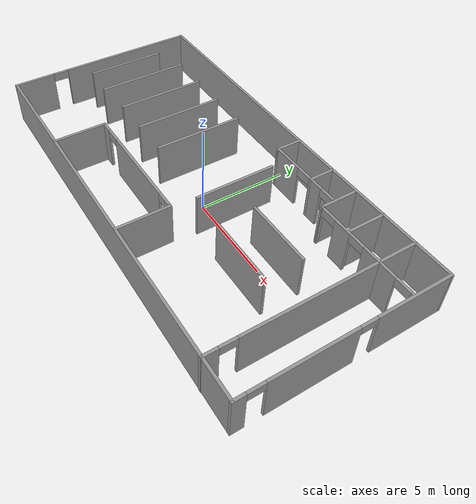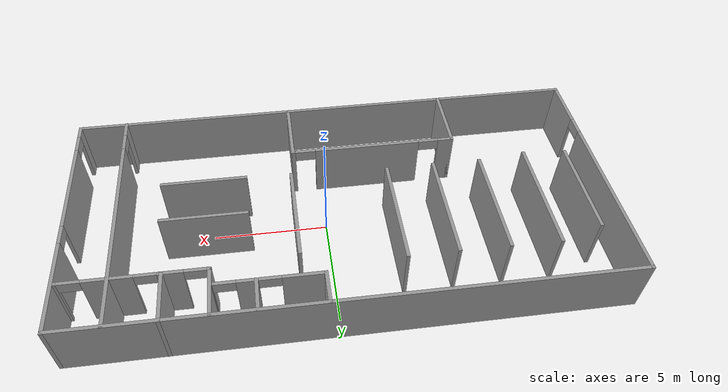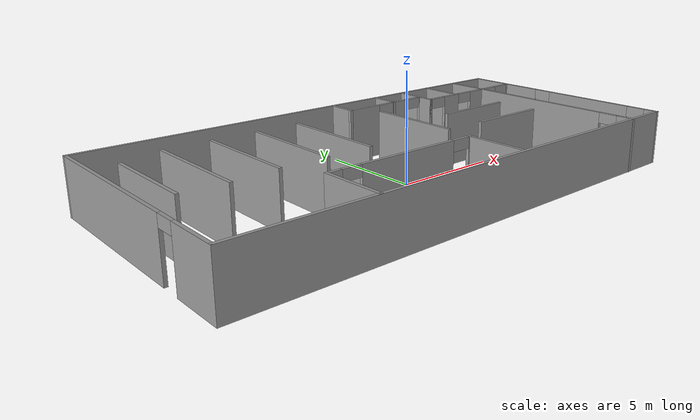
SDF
<?xml version='1.0'?>
<sdf version='1.6'>
  <model name='retail'>
    <pose frame=''>-0.623438 0.128849 0 0 -0 0</pose>
    <link name='Wall_16'>
      <collision name='Wall_16_Collision'>
        <geometry>
          <box>
            <size>23.25 0.15 2.5</size>
          </box>
        </geometry>
        <pose frame=''>0 0 1.25 0 -0 0</pose>
      </collision>
      <visual name='Wall_16_Visual'>
        <pose frame=''>0 0 1.25 0 -0 0</pose>
        <geometry>
          <box>
            <size>23.25 0.15 2.5</size>
          </box>
        </geometry>
        <material>
          <script>
            <uri>file://media/materials/scripts/gazebo.material</uri>
            <name>Gazebo/Grey</name>
          </script>
          <ambient>1 1 1 1</ambient>
        </material>
        <meta>
          <layer>0</layer>
        </meta>
      </visual>
      <pose frame=''>0 -5.54055 0 0 -0 0</pose>
    </link>
    <link name='Wall_17'>
      <pose frame=''>11.55 0.009451 0 0 -0 1.5708</pose>
      <visual name='Wall_17_Visual_0'>
        <pose frame=''>-5.28706 0 1.25 0 -0 0</pose>
        <geometry>
          <box>
            <size>0.675885 0.15 2.5</size>
          </box>
        </geometry>
        <material>
          <script>
            <uri>file://media/materials/scripts/gazebo.material</uri>
            <name>Gazebo/Grey</name>
          </script>
          <ambient>1 1 1 1</ambient>
        </material>
        <meta>
          <layer>0</layer>
        </meta>
      </visual>
      <collision name='Wall_17_Collision_0'>
        <geometry>
          <box>
            <size>0.675885 0.15 2.5</size>
          </box>
        </geometry>
        <pose frame=''>-5.28706 0 1.25 0 -0 0</pose>
      </collision>
      <visual name='Wall_17_Visual_1'>
        <pose frame=''>-1.77241 0 1.25 0 -0 0</pose>
        <geometry>
          <box>
            <size>4.55341 0.15 2.5</size>
          </box>
        </geometry>
        <material>
          <script>
            <uri>file://media/materials/scripts/gazebo.material</uri>
            <name>Gazebo/Grey</name>
          </script>
          <ambient>1 1 1 1</ambient>
        </material>
        <meta>
          <layer>0</layer>
        </meta>
      </visual>
      <collision name='Wall_17_Collision_1'>
        <geometry>
          <box>
            <size>4.55341 0.15 2.5</size>
          </box>
        </geometry>
        <pose frame=''>-1.77241 0 1.25 0 -0 0</pose>
      </collision>
      <visual name='Wall_17_Visual_2'>
        <pose frame=''>3.51465 0 1.25 0 -0 0</pose>
        <geometry>
          <box>
            <size>4.2207 0.15 2.5</size>
          </box>
        </geometry>
        <material>
          <script>
            <uri>file://media/materials/scripts/gazebo.material</uri>
            <name>Gazebo/Grey</name>
          </script>
          <ambient>1 1 1 1</ambient>
        </material>
        <meta>
          <layer>0</layer>
        </meta>
      </visual>
      <collision name='Wall_17_Collision_2'>
        <geometry>
          <box>
            <size>4.2207 0.15 2.5</size>
          </box>
        </geometry>
        <pose frame=''>3.51465 0 1.25 0 -0 0</pose>
      </collision>
      <visual name='Wall_17_Visual_3'>
        <pose frame=''>-4.49911 0 2.25 0 -0 0</pose>
        <geometry>
          <box>
            <size>0.9 0.15 0.5</size>
          </box>
        </geometry>
        <material>
          <script>
            <uri>file://media/materials/scripts/gazebo.material</uri>
            <name>Gazebo/Grey</name>
          </script>
          <ambient>1 1 1 1</ambient>
        </material>
        <meta>
          <layer>0</layer>
        </meta>
      </visual>
      <collision name='Wall_17_Collision_3'>
        <geometry>
          <box>
            <size>0.9 0.15 0.5</size>
          </box>
        </geometry>
        <pose frame=''>-4.49911 0 2.25 0 -0 0</pose>
      </collision>
      <visual name='Wall_17_Visual_4'>
        <pose frame=''>0.954296 0 2.25 0 -0 0</pose>
        <geometry>
          <box>
            <size>0.9 0.15 0.5</size>
          </box>
        </geometry>
        <material>
          <script>
            <uri>file://media/materials/scripts/gazebo.material</uri>
            <name>Gazebo/Grey</name>
          </script>
          <ambient>1 1 1 1</ambient>
        </material>
        <meta>
          <layer>0</layer>
        </meta>
      </visual>
      <collision name='Wall_17_Collision_4'>
        <geometry>
          <box>
            <size>0.9 0.15 0.5</size>
          </box>
        </geometry>
        <pose frame=''>0.954296 0 2.25 0 -0 0</pose>
      </collision>
    </link>
    <link name='Wall_18'>
      <collision name='Wall_18_Collision'>
        <geometry>
          <box>
            <size>23.25 0.15 2.5</size>
          </box>
        </geometry>
        <pose frame=''>0 0 1.25 0 -0 0</pose>
      </collision>
      <visual name='Wall_18_Visual'>
        <pose frame=''>0 0 1.25 0 -0 0</pose>
        <geometry>
          <box>
            <size>23.25 0.15 2.5</size>
          </box>
        </geometry>
        <material>
          <script>
            <uri>file://media/materials/scripts/gazebo.material</uri>
            <name>Gazebo/Grey</name>
          </script>
          <ambient>1 1 1 1</ambient>
        </material>
        <meta>
          <layer>0</layer>
        </meta>
      </visual>
      <pose frame=''>0 5.55945 0 0 -0 3.14159</pose>
    </link>
    <link name='Wall_19'>
      <pose frame=''>-11.55 0.009451 0 0 -0 -1.5708</pose>
      <visual name='Wall_19_Visual_0'>
        <pose frame=''>-1.63416 0 1.25 0 -0 0</pose>
        <geometry>
          <box>
            <size>7.98168 0.15 2.5</size>
          </box>
        </geometry>
        <material>
          <script>
            <uri>file://media/materials/scripts/gazebo.material</uri>
            <name>Gazebo/Grey</name>
          </script>
          <ambient>1 1 1 1</ambient>
        </material>
        <meta>
          <layer>0</layer>
        </meta>
      </visual>
      <collision name='Wall_19_Collision_0'>
        <geometry>
          <box>
            <size>7.98168 0.15 2.5</size>
          </box>
        </geometry>
        <pose frame=''>-1.63416 0 1.25 0 -0 0</pose>
      </collision>
      <visual name='Wall_19_Visual_1'>
        <pose frame=''>4.44084 0 1.25 0 -0 0</pose>
        <geometry>
          <box>
            <size>2.36832 0.15 2.5</size>
          </box>
        </geometry>
        <material>
          <script>
            <uri>file://media/materials/scripts/gazebo.material</uri>
            <name>Gazebo/Grey</name>
          </script>
          <ambient>1 1 1 1</ambient>
        </material>
        <meta>
          <layer>0</layer>
        </meta>
      </visual>
      <collision name='Wall_19_Collision_1'>
        <geometry>
          <box>
            <size>2.36832 0.15 2.5</size>
          </box>
        </geometry>
        <pose frame=''>4.44084 0 1.25 0 -0 0</pose>
      </collision>
      <visual name='Wall_19_Visual_2'>
        <pose frame=''>2.80668 0 2.25 0 -0 0</pose>
        <geometry>
          <box>
            <size>0.9 0.15 0.5</size>
          </box>
        </geometry>
        <material>
          <script>
            <uri>file://media/materials/scripts/gazebo.material</uri>
            <name>Gazebo/Grey</name>
          </script>
          <ambient>1 1 1 1</ambient>
        </material>
        <meta>
          <layer>0</layer>
        </meta>
      </visual>
      <collision name='Wall_19_Collision_2'>
        <geometry>
          <box>
            <size>0.9 0.15 0.5</size>
          </box>
        </geometry>
        <pose frame=''>2.80668 0 2.25 0 -0 0</pose>
      </collision>
    </link>
    <link name='Wall_35'>
      <collision name='Wall_35_Collision'>
        <geometry>
          <box>
            <size>2.25 0.15 2.5</size>
          </box>
        </geometry>
        <pose frame=''>0 0 1.25 0 -0 0</pose>
      </collision>
      <visual name='Wall_35_Visual'>
        <pose frame=''>0 0 1.25 0 -0 0</pose>
        <geometry>
          <box>
            <size>2.25 0.15 2.5</size>
          </box>
        </geometry>
        <material>
          <script>
            <uri>file://media/materials/scripts/gazebo.material</uri>
            <name>Gazebo/Grey</name>
          </script>
          <ambient>1 1 1 1</ambient>
        </material>
        <meta>
          <layer>0</layer>
        </meta>
      </visual>
      <pose frame=''>5.55195 4.48539 0 0 -0 -1.5708</pose>
    </link>
    <link name='Wall_36'>
      <pose frame=''>8.47695 3.43539 0 0 -0 0</pose>
      <visual name='Wall_36_Visual_0'>
        <pose frame=''>-2.9149 0 1.25 0 -0 0</pose>
        <geometry>
          <box>
            <size>0.170197 0.15 2.5</size>
          </box>
        </geometry>
        <material>
          <script>
            <uri>file://media/materials/scripts/gazebo.material</uri>
            <name>Gazebo/Grey</name>
          </script>
          <ambient>1 1 1 1</ambient>
        </material>
        <meta>
          <layer>0</layer>
        </meta>
      </visual>
      <collision name='Wall_36_Collision_0'>
        <geometry>
          <box>
            <size>0.170197 0.15 2.5</size>
          </box>
        </geometry>
        <pose frame=''>-2.9149 0 1.25 0 -0 0</pose>
      </collision>
      <visual name='Wall_36_Visual_1'>
        <pose frame=''>-1.42075 0 1.25 0 -0 0</pose>
        <geometry>
          <box>
            <size>1.0181 0.15 2.5</size>
          </box>
        </geometry>
        <material>
          <script>
            <uri>file://media/materials/scripts/gazebo.material</uri>
            <name>Gazebo/Grey</name>
          </script>
          <ambient>1 1 1 1</ambient>
        </material>
        <meta>
          <layer>0</layer>
        </meta>
      </visual>
      <collision name='Wall_36_Collision_1'>
        <geometry>
          <box>
            <size>1.0181 0.15 2.5</size>
          </box>
        </geometry>
        <pose frame=''>-1.42075 0 1.25 0 -0 0</pose>
      </collision>
      <visual name='Wall_36_Visual_2'>
        <pose frame=''>0.986268 0 1.25 0 -0 0</pose>
        <geometry>
          <box>
            <size>1.99595 0.15 2.5</size>
          </box>
        </geometry>
        <material>
          <script>
            <uri>file://media/materials/scripts/gazebo.material</uri>
            <name>Gazebo/Grey</name>
          </script>
          <ambient>1 1 1 1</ambient>
        </material>
        <meta>
          <layer>0</layer>
        </meta>
      </visual>
      <collision name='Wall_36_Collision_2'>
        <geometry>
          <box>
            <size>1.99595 0.15 2.5</size>
          </box>
        </geometry>
        <pose frame=''>0.986268 0 1.25 0 -0 0</pose>
      </collision>
      <visual name='Wall_36_Visual_3'>
        <pose frame=''>2.94212 0 1.25 0 -0 0</pose>
        <geometry>
          <box>
            <size>0.115758 0.15 2.5</size>
          </box>
        </geometry>
        <material>
          <script>
            <uri>file://media/materials/scripts/gazebo.material</uri>
            <name>Gazebo/Grey</name>
          </script>
          <ambient>1 1 1 1</ambient>
        </material>
        <meta>
          <layer>0</layer>
        </meta>
      </visual>
      <collision name='Wall_36_Collision_3'>
        <geometry>
          <box>
            <size>0.115758 0.15 2.5</size>
          </box>
        </geometry>
        <pose frame=''>2.94212 0 1.25 0 -0 0</pose>
      </collision>
      <visual name='Wall_36_Visual_4'>
        <pose frame=''>-2.3798 0 2.25 0 -0 0</pose>
        <geometry>
          <box>
            <size>0.9 0.15 0.5</size>
          </box>
        </geometry>
        <material>
          <script>
            <uri>file://media/materials/scripts/gazebo.material</uri>
            <name>Gazebo/Grey</name>
          </script>
          <ambient>1 1 1 1</ambient>
        </material>
        <meta>
          <layer>0</layer>
        </meta>
      </visual>
      <collision name='Wall_36_Collision_4'>
        <geometry>
          <box>
            <size>0.9 0.15 0.5</size>
          </box>
        </geometry>
        <pose frame=''>-2.3798 0 2.25 0 -0 0</pose>
      </collision>
      <visual name='Wall_36_Visual_5'>
        <pose frame=''>-0.461707 0 2.25 0 -0 0</pose>
        <geometry>
          <box>
            <size>0.9 0.15 0.5</size>
          </box>
        </geometry>
        <material>
          <script>
            <uri>file://media/materials/scripts/gazebo.material</uri>
            <name>Gazebo/Grey</name>
          </script>
          <ambient>1 1 1 1</ambient>
        </material>
        <meta>
          <layer>0</layer>
        </meta>
      </visual>
      <collision name='Wall_36_Collision_5'>
        <geometry>
          <box>
            <size>0.9 0.15 0.5</size>
          </box>
        </geometry>
        <pose frame=''>-0.461707 0 2.25 0 -0 0</pose>
      </collision>
      <visual name='Wall_36_Visual_6'>
        <pose frame=''>2.43424 0 2.25 0 -0 0</pose>
        <geometry>
          <box>
            <size>0.9 0.15 0.5</size>
          </box>
        </geometry>
        <material>
          <script>
            <uri>file://media/materials/scripts/gazebo.material</uri>
            <name>Gazebo/Grey</name>
          </script>
          <ambient>1 1 1 1</ambient>
        </material>
        <meta>
          <layer>0</layer>
        </meta>
      </visual>
      <collision name='Wall_36_Collision_6'>
        <geometry>
          <box>
            <size>0.9 0.15 0.5</size>
          </box>
        </geometry>
        <pose frame=''>2.43424 0 2.25 0 -0 0</pose>
      </collision>
    </link>
    <link name='Wall_38'>
      <pose frame=''>9.44374 -0.014611 0 0 -0 -1.5708</pose>
      <visual name='Wall_38_Visual_0'>
        <pose frame=''>-0.875193 0 1.25 0 -0 0</pose>
        <geometry>
          <box>
            <size>9.49961 0.15 2.5</size>
          </box>
        </geometry>
        <material>
          <script>
            <uri>file://media/materials/scripts/gazebo.material</uri>
            <name>Gazebo/Grey</name>
          </script>
          <ambient>1 1 1 1</ambient>
        </material>
        <meta>
          <layer>0</layer>
        </meta>
      </visual>
      <collision name='Wall_38_Collision_0'>
        <geometry>
          <box>
            <size>9.49961 0.15 2.5</size>
          </box>
        </geometry>
        <pose frame=''>-0.875193 0 1.25 0 -0 0</pose>
      </collision>
      <visual name='Wall_38_Visual_1'>
        <pose frame=''>5.19981 0 1.25 0 -0 0</pose>
        <geometry>
          <box>
            <size>0.850386 0.15 2.5</size>
          </box>
        </geometry>
        <material>
          <script>
            <uri>file://media/materials/scripts/gazebo.material</uri>
            <name>Gazebo/Grey</name>
          </script>
          <ambient>1 1 1 1</ambient>
        </material>
        <meta>
          <layer>0</layer>
        </meta>
      </visual>
      <collision name='Wall_38_Collision_1'>
        <geometry>
          <box>
            <size>0.850386 0.15 2.5</size>
          </box>
        </geometry>
        <pose frame=''>5.19981 0 1.25 0 -0 0</pose>
      </collision>
      <visual name='Wall_38_Visual_2'>
        <pose frame=''>4.32461 0 2.25 0 -0 0</pose>
        <geometry>
          <box>
            <size>0.9 0.15 0.5</size>
          </box>
        </geometry>
        <material>
          <script>
            <uri>file://media/materials/scripts/gazebo.material</uri>
            <name>Gazebo/Grey</name>
          </script>
          <ambient>1 1 1 1</ambient>
        </material>
        <meta>
          <layer>0</layer>
        </meta>
      </visual>
      <collision name='Wall_38_Collision_2'>
        <geometry>
          <box>
            <size>0.9 0.15 0.5</size>
          </box>
        </geometry>
        <pose frame=''>4.32461 0 2.25 0 -0 0</pose>
      </collision>
    </link>
    <link name='Wall_44'>
      <collision name='Wall_44_Collision'>
        <geometry>
          <box>
            <size>2.25 0.15 2.5</size>
          </box>
        </geometry>
        <pose frame=''>0 0 1.25 0 -0 0</pose>
      </collision>
      <visual name='Wall_44_Visual'>
        <pose frame=''>0 0 1.25 0 -0 0</pose>
        <geometry>
          <box>
            <size>2.25 0.15 2.5</size>
          </box>
        </geometry>
        <material>
          <script>
            <uri>file://media/materials/scripts/gazebo.material</uri>
            <name>Gazebo/Grey</name>
          </script>
          <ambient>1 1 1 1</ambient>
        </material>
        <meta>
          <layer>0</layer>
        </meta>
      </visual>
      <pose frame=''>7.40721 4.51461 0 0 -0 1.5708</pose>
    </link>
    <link name='Wall_46'>
      <collision name='Wall_46_Collision'>
        <geometry>
          <box>
            <size>3 0.15 2.5</size>
          </box>
        </geometry>
        <pose frame=''>0 0 1.25 0 -0 0</pose>
      </collision>
      <visual name='Wall_46_Visual'>
        <pose frame=''>0 0 1.25 0 -0 0</pose>
        <geometry>
          <box>
            <size>3 0.15 2.5</size>
          </box>
        </geometry>
        <material>
          <script>
            <uri>file://media/materials/scripts/gazebo.material</uri>
            <name>Gazebo/Grey</name>
          </script>
          <ambient>1 1 1 1</ambient>
        </material>
        <meta>
          <layer>0</layer>
        </meta>
      </visual>
      <pose frame=''>-5.5361 -4.08719 0 0 -0 1.5708</pose>
    </link>
    <link name='Wall_47'>
      <pose frame=''>-1.8611 -2.66219 0 0 -0 0</pose>
      <visual name='Wall_47_Visual_0'>
        <pose frame=''>-3.38624 0 1.25 0 -0 0</pose>
        <geometry>
          <box>
            <size>0.727518 0.15 2.5</size>
          </box>
        </geometry>
        <material>
          <script>
            <uri>file://media/materials/scripts/gazebo.material</uri>
            <name>Gazebo/Grey</name>
          </script>
          <ambient>1 1 1 1</ambient>
        </material>
        <meta>
          <layer>0</layer>
        </meta>
      </visual>
      <collision name='Wall_47_Collision_0'>
        <geometry>
          <box>
            <size>0.727518 0.15 2.5</size>
          </box>
        </geometry>
        <pose frame=''>-3.38624 0 1.25 0 -0 0</pose>
      </collision>
      <visual name='Wall_47_Visual_1'>
        <pose frame=''>0.267053 0 1.25 0 -0 0</pose>
        <geometry>
          <box>
            <size>4.77907 0.15 2.5</size>
          </box>
        </geometry>
        <material>
          <script>
            <uri>file://media/materials/scripts/gazebo.material</uri>
            <name>Gazebo/Grey</name>
          </script>
          <ambient>1 1 1 1</ambient>
        </material>
        <meta>
          <layer>0</layer>
        </meta>
      </visual>
      <collision name='Wall_47_Collision_1'>
        <geometry>
          <box>
            <size>4.77907 0.15 2.5</size>
          </box>
        </geometry>
        <pose frame=''>0.267053 0 1.25 0 -0 0</pose>
      </collision>
      <visual name='Wall_47_Visual_2'>
        <pose frame=''>3.65329 0 1.25 0 -0 0</pose>
        <geometry>
          <box>
            <size>0.193413 0.15 2.5</size>
          </box>
        </geometry>
        <material>
          <script>
            <uri>file://media/materials/scripts/gazebo.material</uri>
            <name>Gazebo/Grey</name>
          </script>
          <ambient>1 1 1 1</ambient>
        </material>
        <meta>
          <layer>0</layer>
        </meta>
      </visual>
      <collision name='Wall_47_Collision_2'>
        <geometry>
          <box>
            <size>0.193413 0.15 2.5</size>
          </box>
        </geometry>
        <pose frame=''>3.65329 0 1.25 0 -0 0</pose>
      </collision>
      <visual name='Wall_47_Visual_3'>
        <pose frame=''>-2.57248 0 2.25 0 -0 0</pose>
        <geometry>
          <box>
            <size>0.9 0.15 0.5</size>
          </box>
        </geometry>
        <material>
          <script>
            <uri>file://media/materials/scripts/gazebo.material</uri>
            <name>Gazebo/Grey</name>
          </script>
          <ambient>1 1 1 1</ambient>
        </material>
        <meta>
          <layer>0</layer>
        </meta>
      </visual>
      <collision name='Wall_47_Collision_3'>
        <geometry>
          <box>
            <size>0.9 0.15 0.5</size>
          </box>
        </geometry>
        <pose frame=''>-2.57248 0 2.25 0 -0 0</pose>
      </collision>
      <visual name='Wall_47_Visual_4'>
        <pose frame=''>3.10659 0 2.25 0 -0 0</pose>
        <geometry>
          <box>
            <size>0.9 0.15 0.5</size>
          </box>
        </geometry>
        <material>
          <script>
            <uri>file://media/materials/scripts/gazebo.material</uri>
            <name>Gazebo/Grey</name>
          </script>
          <ambient>1 1 1 1</ambient>
        </material>
        <meta>
          <layer>0</layer>
        </meta>
      </visual>
      <collision name='Wall_47_Collision_4'>
        <geometry>
          <box>
            <size>0.9 0.15 0.5</size>
          </box>
        </geometry>
        <pose frame=''>3.10659 0 2.25 0 -0 0</pose>
      </collision>
    </link>
    <link name='Wall_48'>
      <collision name='Wall_48_Collision'>
        <geometry>
          <box>
            <size>3 0.15 2.5</size>
          </box>
        </geometry>
        <pose frame=''>0 0 1.25 0 -0 0</pose>
      </collision>
      <visual name='Wall_48_Visual'>
        <pose frame=''>0 0 1.25 0 -0 0</pose>
        <geometry>
          <box>
            <size>3 0.15 2.5</size>
          </box>
        </geometry>
        <material>
          <script>
            <uri>file://media/materials/scripts/gazebo.material</uri>
            <name>Gazebo/Grey</name>
          </script>
          <ambient>1 1 1 1</ambient>
        </material>
        <meta>
          <layer>0</layer>
        </meta>
      </visual>
      <pose frame=''>1.8139 -4.08719 0 0 -0 -1.5708</pose>
    </link>
    <link name='Wall_50'>
      <collision name='Wall_50_Collision'>
        <geometry>
          <box>
            <size>1.5 0.15 2.5</size>
          </box>
        </geometry>
        <pose frame=''>0 0 1.25 0 -0 0</pose>
      </collision>
      <visual name='Wall_50_Visual'>
        <pose frame=''>0 0 1.25 0 -0 0</pose>
        <geometry>
          <box>
            <size>1.5 0.15 2.5</size>
          </box>
        </geometry>
        <material>
          <script>
            <uri>file://media/materials/scripts/gazebo.material</uri>
            <name>Gazebo/Grey</name>
          </script>
          <ambient>1 1 1 1</ambient>
        </material>
        <meta>
          <layer>0</layer>
        </meta>
      </visual>
      <pose frame=''>1.0704 4.87092 0 0 -0 -1.5708</pose>
    </link>
    <link name='Wall_56'>
      <collision name='Wall_56_Collision'>
        <geometry>
          <box>
            <size>1.5 0.15 2.5</size>
          </box>
        </geometry>
        <pose frame=''>0 0 1.25 0 -0 0</pose>
      </collision>
      <visual name='Wall_56_Visual'>
        <pose frame=''>0 0 1.25 0 -0 0</pose>
        <geometry>
          <box>
            <size>1.5 0.15 2.5</size>
          </box>
        </geometry>
        <material>
          <script>
            <uri>file://media/materials/scripts/gazebo.material</uri>
            <name>Gazebo/Grey</name>
          </script>
          <ambient>1 1 1 1</ambient>
        </material>
        <meta>
          <layer>0</layer>
        </meta>
      </visual>
      <pose frame=''>3.77288 4.87092 0 0 -0 -1.5708</pose>
    </link>
    <link name='Wall_60'>
      <pose frame=''>3.2454 4.19592 0 0 -0 0</pose>
      <visual name='Wall_60_Visual_0'>
        <pose frame=''>-1.3533 0 1.25 0 -0 0</pose>
        <geometry>
          <box>
            <size>1.79341 0.15 2.5</size>
          </box>
        </geometry>
        <material>
          <script>
            <uri>file://media/materials/scripts/gazebo.material</uri>
            <name>Gazebo/Grey</name>
          </script>
          <ambient>1 1 1 1</ambient>
        </material>
        <meta>
          <layer>0</layer>
        </meta>
      </visual>
      <collision name='Wall_60_Collision_0'>
        <geometry>
          <box>
            <size>1.79341 0.15 2.5</size>
          </box>
        </geometry>
        <pose frame=''>-1.3533 0 1.25 0 -0 0</pose>
      </collision>
      <visual name='Wall_60_Visual_1'>
        <pose frame=''>0.877237 0 1.25 0 -0 0</pose>
        <geometry>
          <box>
            <size>0.867658 0.15 2.5</size>
          </box>
        </geometry>
        <material>
          <script>
            <uri>file://media/materials/scripts/gazebo.material</uri>
            <name>Gazebo/Grey</name>
          </script>
          <ambient>1 1 1 1</ambient>
        </material>
        <meta>
          <layer>0</layer>
        </meta>
      </visual>
      <collision name='Wall_60_Collision_1'>
        <geometry>
          <box>
            <size>0.867658 0.15 2.5</size>
          </box>
        </geometry>
        <pose frame=''>0.877237 0 1.25 0 -0 0</pose>
      </collision>
      <visual name='Wall_60_Visual_2'>
        <pose frame=''>2.23053 0 1.25 0 -0 0</pose>
        <geometry>
          <box>
            <size>0.038935 0.15 2.5</size>
          </box>
        </geometry>
        <material>
          <script>
            <uri>file://media/materials/scripts/gazebo.material</uri>
            <name>Gazebo/Grey</name>
          </script>
          <ambient>1 1 1 1</ambient>
        </material>
        <meta>
          <layer>0</layer>
        </meta>
      </visual>
      <collision name='Wall_60_Collision_2'>
        <geometry>
          <box>
            <size>0.038935 0.15 2.5</size>
          </box>
        </geometry>
        <pose frame=''>2.23053 0 1.25 0 -0 0</pose>
      </collision>
      <visual name='Wall_60_Visual_3'>
        <pose frame=''>-0.006592 0 2.25 0 -0 0</pose>
        <geometry>
          <box>
            <size>0.9 0.15 0.5</size>
          </box>
        </geometry>
        <material>
          <script>
            <uri>file://media/materials/scripts/gazebo.material</uri>
            <name>Gazebo/Grey</name>
          </script>
          <ambient>1 1 1 1</ambient>
        </material>
        <meta>
          <layer>0</layer>
        </meta>
      </visual>
      <collision name='Wall_60_Collision_3'>
        <geometry>
          <box>
            <size>0.9 0.15 0.5</size>
          </box>
        </geometry>
        <pose frame=''>-0.006592 0 2.25 0 -0 0</pose>
      </collision>
      <visual name='Wall_60_Visual_4'>
        <pose frame=''>1.76107 0 2.25 0 -0 0</pose>
        <geometry>
          <box>
            <size>0.9 0.15 0.5</size>
          </box>
        </geometry>
        <material>
          <script>
            <uri>file://media/materials/scripts/gazebo.material</uri>
            <name>Gazebo/Grey</name>
          </script>
          <ambient>1 1 1 1</ambient>
        </material>
        <meta>
          <layer>0</layer>
        </meta>
      </visual>
      <collision name='Wall_60_Collision_4'>
        <geometry>
          <box>
            <size>0.9 0.15 0.5</size>
          </box>
        </geometry>
        <pose frame=''>1.76107 0 2.25 0 -0 0</pose>
      </collision>
    </link>
    <link name='Wall_62'>
      <collision name='Wall_62_Collision'>
        <geometry>
          <box>
            <size>4.5 0.15 2.5</size>
          </box>
        </geometry>
        <pose frame=''>0 0 1.25 0 -0 0</pose>
      </collision>
      <visual name='Wall_62_Visual'>
        <pose frame=''>0 0 1.25 0 -0 0</pose>
        <geometry>
          <box>
            <size>4.5 0.15 2.5</size>
          </box>
        </geometry>
        <material>
          <script>
            <uri>file://media/materials/scripts/gazebo.material</uri>
            <name>Gazebo/Grey</name>
          </script>
          <ambient>1 1 1 1</ambient>
        </material>
        <meta>
          <layer>0</layer>
        </meta>
      </visual>
      <pose frame=''>-10.4135 1.04533 0 0 -0 -1.5708</pose>
    </link>
    <link name='Wall_64'>
      <collision name='Wall_64_Collision'>
        <geometry>
          <box>
            <size>5.25 0.15 2.5</size>
          </box>
        </geometry>
        <pose frame=''>0 0 1.25 0 -0 0</pose>
      </collision>
      <visual name='Wall_64_Visual'>
        <pose frame=''>0 0 1.25 0 -0 0</pose>
        <geometry>
          <box>
            <size>5.25 0.15 2.5</size>
          </box>
        </geometry>
        <material>
          <script>
            <uri>file://media/materials/scripts/gazebo.material</uri>
            <name>Gazebo/Grey</name>
          </script>
          <ambient>1 1 1 1</ambient>
        </material>
        <meta>
          <layer>0</layer>
        </meta>
      </visual>
      <pose frame=''>-8.53304 1.27209 0 0 -0 -1.5708</pose>
    </link>
    <link name='Wall_66'>
      <collision name='Wall_66_Collision'>
        <geometry>
          <box>
            <size>5 0.15 2.5</size>
          </box>
        </geometry>
        <pose frame=''>0 0 1.25 0 -0 0</pose>
      </collision>
      <visual name='Wall_66_Visual'>
        <pose frame=''>0 0 1.25 0 -0 0</pose>
        <geometry>
          <box>
            <size>5 0.15 2.5</size>
          </box>
        </geometry>
        <material>
          <script>
            <uri>file://media/materials/scripts/gazebo.material</uri>
            <name>Gazebo/Grey</name>
          </script>
          <ambient>1 1 1 1</ambient>
        </material>
        <meta>
          <layer>0</layer>
        </meta>
      </visual>
      <pose frame=''>-6.4269 1.35948 0 0 -0 -1.5708</pose>
    </link>
    <link name='Wall_68'>
      <collision name='Wall_68_Collision'>
        <geometry>
          <box>
            <size>5 0.15 2.5</size>
          </box>
        </geometry>
        <pose frame=''>0 0 1.25 0 -0 0</pose>
      </collision>
      <visual name='Wall_68_Visual'>
        <pose frame=''>0 0 1.25 0 -0 0</pose>
        <geometry>
          <box>
            <size>5 0.15 2.5</size>
          </box>
        </geometry>
        <material>
          <script>
            <uri>file://media/materials/scripts/gazebo.material</uri>
            <name>Gazebo/Grey</name>
          </script>
          <ambient>1 1 1 1</ambient>
        </material>
        <meta>
          <layer>0</layer>
        </meta>
      </visual>
      <pose frame=''>-4.32363 1.32963 0 0 -0 -1.5708</pose>
    </link>
    <link name='Wall_70'>
      <collision name='Wall_70_Collision'>
        <geometry>
          <box>
            <size>5 0.15 2.5</size>
          </box>
        </geometry>
        <pose frame=''>0 0 1.25 0 -0 0</pose>
      </collision>
      <visual name='Wall_70_Visual'>
        <pose frame=''>0 0 1.25 0 -0 0</pose>
        <geometry>
          <box>
            <size>5 0.15 2.5</size>
          </box>
        </geometry>
        <material>
          <script>
            <uri>file://media/materials/scripts/gazebo.material</uri>
            <name>Gazebo/Grey</name>
          </script>
          <ambient>1 1 1 1</ambient>
        </material>
        <meta>
          <layer>0</layer>
        </meta>
      </visual>
      <pose frame=''>-2.22937 1.34832 0 0 -0 -1.5708</pose>
    </link>
    <link name='Wall_74'>
      <collision name='Wall_74_Collision'>
        <geometry>
          <box>
            <size>4.5 0.15 2.5</size>
          </box>
        </geometry>
        <pose frame=''>0 0 1.25 0 -0 0</pose>
      </collision>
      <visual name='Wall_74_Visual'>
        <pose frame=''>0 0 1.25 0 -0 0</pose>
        <geometry>
          <box>
            <size>4.5 0.15 2.5</size>
          </box>
        </geometry>
        <material>
          <script>
            <uri>file://media/materials/scripts/gazebo.material</uri>
            <name>Gazebo/Grey</name>
          </script>
          <ambient>1 1 1 1</ambient>
        </material>
        <meta>
          <layer>0</layer>
        </meta>
      </visual>
      <pose frame=''>1.99653 0.906473 0 0 -0 -1.5708</pose>
    </link>
    <link name='Wall_76'>
      <collision name='Wall_76_Collision'>
        <geometry>
          <box>
            <size>3.75 0.15 2.5</size>
          </box>
        </geometry>
        <pose frame=''>0 0 1.25 0 -0 0</pose>
      </collision>
      <visual name='Wall_76_Visual'>
        <pose frame=''>0 0 1.25 0 -0 0</pose>
        <geometry>
          <box>
            <size>3.75 0.15 2.5</size>
          </box>
        </geometry>
        <material>
          <script>
            <uri>file://media/materials/scripts/gazebo.material</uri>
            <name>Gazebo/Grey</name>
          </script>
          <ambient>1 1 1 1</ambient>
        </material>
        <meta>
          <layer>0</layer>
        </meta>
      </visual>
      <pose frame=''>5.79729 0.706741 0 0 -0 0</pose>
    </link>
    <link name='Wall_78'>
      <collision name='Wall_78_Collision'>
        <geometry>
          <box>
            <size>3.75 0.15 2.5</size>
          </box>
        </geometry>
        <pose frame=''>0 0 1.25 0 -0 0</pose>
      </collision>
      <visual name='Wall_78_Visual'>
        <pose frame=''>0 0 1.25 0 -0 0</pose>
        <geometry>
          <box>
            <size>3.75 0.15 2.5</size>
          </box>
        </geometry>
        <material>
          <script>
            <uri>file://media/materials/scripts/gazebo.material</uri>
            <name>Gazebo/Grey</name>
          </script>
          <ambient>1 1 1 1</ambient>
        </material>
        <meta>
          <layer>0</layer>
        </meta>
      </visual>
      <pose frame=''>5.80269 -1.35025 0 0 -0 0</pose>
    </link>
    <static>1</static>
  </model>
</sdf>
